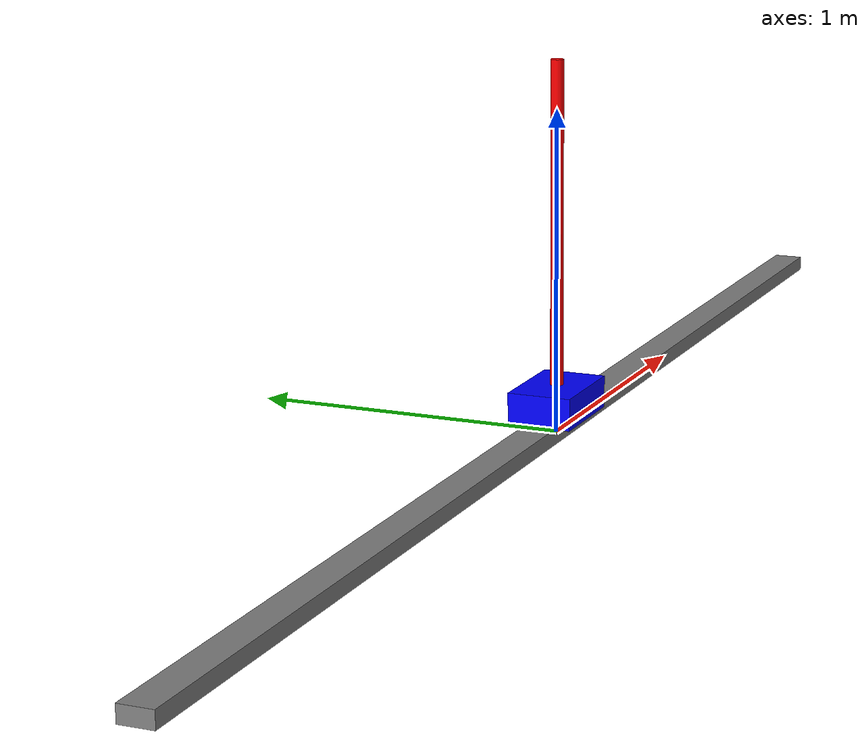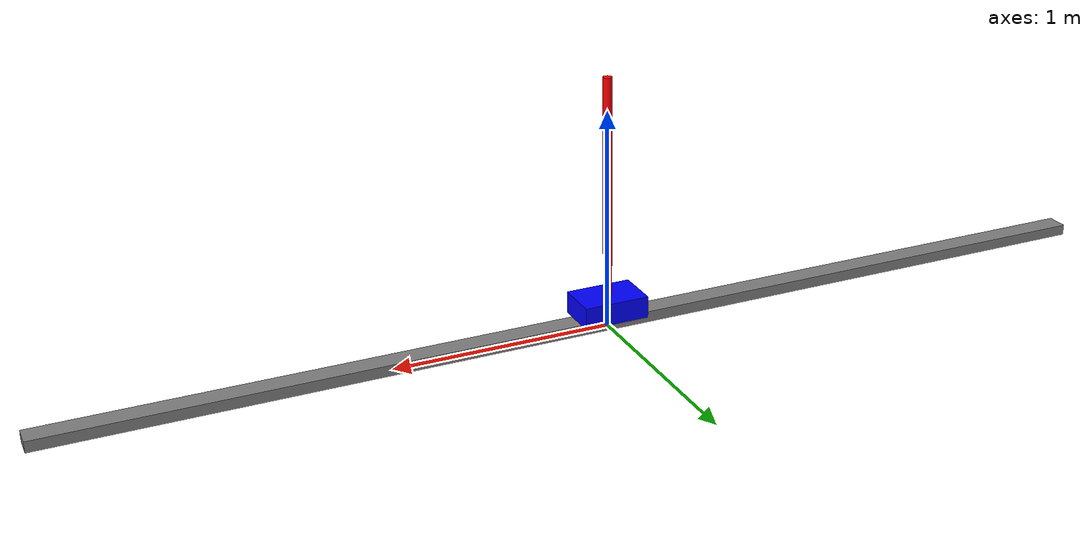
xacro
<?xml version="1.0"?>
<robot name="cart_pole" xmlns:xacro="http://www.ros.org/wiki/xacro">

  <!-- Base / rail reference -->
  <link name="base_link">
    <visual>
      <origin xyz="0 0 0.025" rpy="0 0 0"/>
      <geometry>
        <box size="5.0 0.1 0.05"/>
      </geometry>
      <material name="grey">
        <color rgba="0.5 0.5 0.5 1.0"/>
      </material>
    </visual>

    <collision>
      <origin xyz="0 0 0.025" rpy="0 0 0"/>
      <geometry>
        <box size="5.0 0.1 0.05"/>
      </geometry>
    </collision>

    <inertial>
      <origin xyz="0 0 0.025" rpy="0 0 0"/>
      <mass value="5.0"/>
      <inertia
        ixx="0.1" ixy="0.0" ixz="0.0"
        iyy="0.1" iyz="0.0"
        izz="0.1"/>
    </inertial>
  </link>

  <!-- Cart -->
  <link name="cart_link">
    <visual>
      <origin xyz="0 0 0.05" rpy="0 0 0"/>
      <geometry>
        <box size="0.3 0.2 0.1"/>
      </geometry>
      <material name="blue">
        <color rgba="0 0 1 1"/>
      </material>
    </visual>

    <collision>
      <origin xyz="0 0 0.05" rpy="0 0 0"/>
      <geometry>
        <box size="0.3 0.2 0.1"/>
      </geometry>
    </collision>

    <inertial>
      <origin xyz="0 0 0.05" rpy="0 0 0"/>
      <mass value="1.0"/>
      <inertia
        ixx="0.01" ixy="0.0" ixz="0.0"
        iyy="0.01" iyz="0.0"
        izz="0.01"/>
    </inertial>
  </link>

  <!-- Pole -->
  <link name="pole_link">
    <visual>
      <origin xyz="0 0 0.5" rpy="0 0 0"/>
      <geometry>
        <cylinder radius="0.02" length="1.0"/>
      </geometry>
      <material name="red">
        <color rgba="1 0 0 1"/>
      </material>
    </visual>

    <collision>
      <origin xyz="0 0 0.5" rpy="0 0 0"/>
      <geometry>
        <cylinder radius="0.02" length="1.0"/>
      </geometry>
    </collision>

    <inertial>
      <origin xyz="0 0 0.5" rpy="0 0 0"/>
      <mass value="0.2"/>
      <inertia
        ixx="0.02" ixy="0.0" ixz="0.0"
        iyy="0.02" iyz="0.0"
        izz="0.001"/>
    </inertial>
  </link>

  <!-- Cart moves along x -->
  <joint name="cart_joint" type="prismatic">
    <parent link="base_link"/>
    <child link="cart_link"/>
    <origin xyz="0 0 0.05" rpy="0 0 0"/>
    <axis xyz="1 0 0"/>
    <limit lower="-2.0" upper="2.0" effort="50.0" velocity="2.0"/>
    <dynamics damping="0.2" friction="0.1"/>
  </joint>

  <!-- Pole rotates in x-z plane -->
  <joint name="pole_joint" type="revolute">
    <parent link="cart_link"/>
    <child link="pole_link"/>
    <origin xyz="0 0 0.1" rpy="0 0 0"/>
    <axis xyz="0 1 0"/>
    <limit lower="-3.14159" upper="3.14159" effort="20.0" velocity="10.0"/>
    <dynamics damping="0.01" friction="0.0"/>
  </joint>

  <!-- ros2_control -->
  <ros2_control name="CartPoleSystem" type="system">
    <hardware>
      <plugin>gz_ros2_control/GazeboSimSystem</plugin>
    </hardware>

    <joint name="cart_joint">
      <command_interface name="effort"/>
      <state_interface name="position"/>
      <state_interface name="velocity"/>
      <state_interface name="effort"/>
    </joint>

    <joint name="pole_joint">
      <state_interface name="position"/>
      <state_interface name="velocity"/>
      <state_interface name="effort"/>
    </joint>
  </ros2_control>

  <!-- Gazebo plugin -->
  <gazebo>
    <plugin filename="libgz_ros2_control-system.so" name="gz_ros2_control::GazeboSimROS2ControlPlugin">
      <parameters>$(find cart_pole_control)/config/controllers.yaml</parameters>
    </plugin>
  </gazebo>

</robot>
